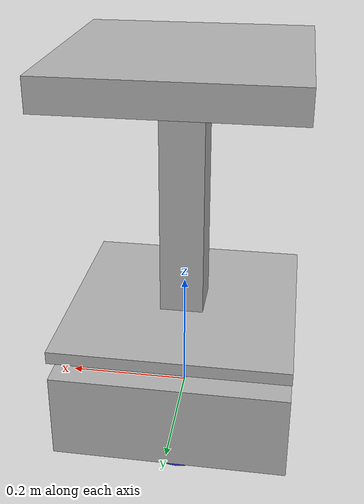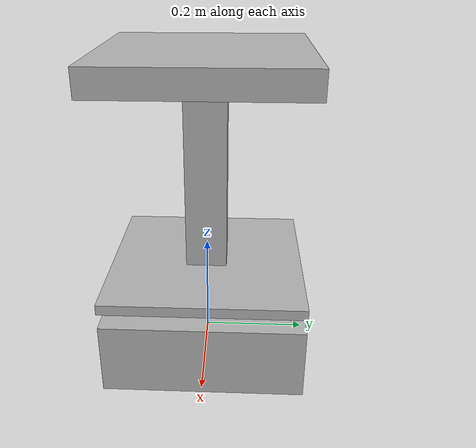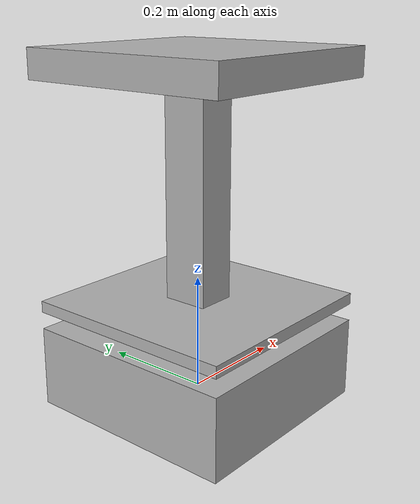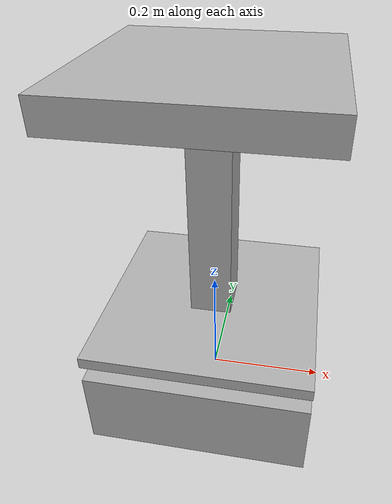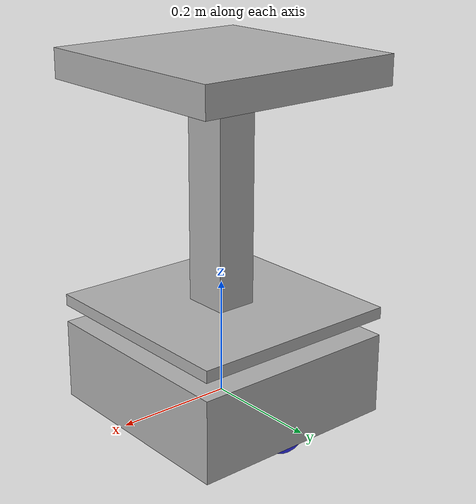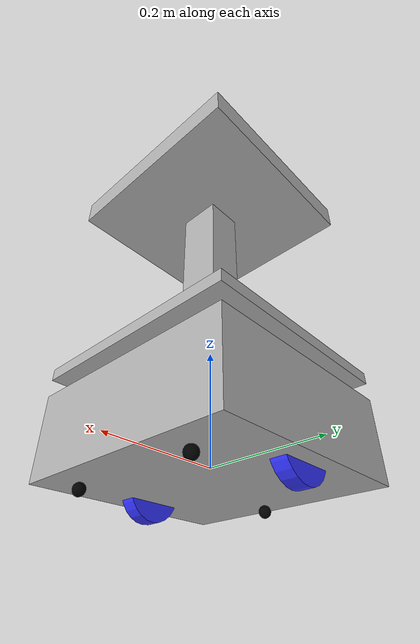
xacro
<?xml version="1.0"?>
<robot xmlns:xacro="http://www.ros.org/wiki/xacro"  name="robot">

    <xacro:include filename="inertial_macros.xacro"/>

    <!-- PARAMETERS -->

    <!-- CHASSIS PARAMETERS -->
    <xacro:property name="chassis_length" value="0.370"/>
    <xacro:property name="chassis_width" value="0.380"/>
    <xacro:property name="chassis_height" value="0.140"/>
    <xacro:property name="chassis_mass" value="1.0"/>

    <!-- EXTURSION PARAMETERS -->
    <xacro:property name="ext_length" value="0.070"/>
    <xacro:property name="ext_width" value="0.080"/>
    <xacro:property name="ext_height" value="0.480"/>
    <xacro:property name="ext_mass" value="0.5"/>

    <!-- TOF_TABLE PARAMETERS -->
    <xacro:property name="tt_length" value="0.370"/>
    <xacro:property name="tt_width" value="0.380"/>
    <xacro:property name="tt_height" value="0.020"/>
    <xacro:property name="tt_mass" value="0.02"/>

    <!-- HMI PARAMETERS -->
    <xacro:property name="hmi_length" value="0.370"/>
    <xacro:property name="hmi_width" value="0.380"/>
    <xacro:property name="hmi_height" value="0.050"/>
    <xacro:property name="hmi_mass" value="0.5"/>

    <!-- OFFSET PARAMETERS -->
    <xacro:property name="wheel_offset_x" value="0.285"/>
    <xacro:property name="wheel_offset_y" value="0.148"/>
    <xacro:property name="wheel_offset_z" value="0.005"/>

    <!-- WHEELS PARAMETERS -->
    <xacro:property name="wheel_radius" value="0.05"/>
    <xacro:property name="wheel_thickness" value="0.026"/>
    <xacro:property name="wheel_mass" value="0.05"/>

    <!-- CASTER WHEEL PARAMETERS -->
    <xacro:property name="caster_wheel_radius" value="0.01"/>
    <xacro:property name="caster_wheel_mass" value="0.01"/>

    <!-- CASTER WHEEL OFFSET PARAMTERS -->
    <xacro:property name="caster_wheel_offset_x" value="0.13"/>
    <xacro:property name="caster_wheel_offset_y" value="0.11"/>
    <xacro:property name="caster_wheel_offset_z" value="${wheel_offset_z - wheel_radius + caster_wheel_radius}"/>

    <!-- XACRO COLORS -->
    <material name="white">
        <color rgba="1 1 1 1"/>
    </material>

    <material name="orange">
        <color rgba="1 0.3 0.1 1"/>
    </material>

    <material name="grey">
        <color rgba="0.2 0.2 0.2 1.0"/>
    </material>

    <material name="green">
        <color rgba="0 0.8 0 1.0"/>
    </material>

    <material name="blue">
        <color rgba="0.2 0.2 1 1"/>
    </material>

    <material name="black">
        <color rgba="0 0 0 1"/>
    </material>

    <material name="red">
        <color rgba="1 0 0 1"/>
    </material>

    <material name="silver">
        <color rgba="0.7 0.7 0.7 1.0"/>
    </material>

    <!-- BASE LINK -->
    <link name="base_link">
    </link>

    <!-- BASE FOOTPRINT JOINT -->
    <joint name="base_footprint_joint" type="fixed">
        <parent link="base_link"/>
        <child link="base_footprint"/>
        <origin xyz="0 0 0" rpy="0 0 0"/>
    </joint>

    <!-- BASE FOOTPRINT LINK -->
    <link name="base_footprint">
    </link>

    <!-- CHASSIS JOINT -->
    <joint name="chassis_joint" type="fixed">
        <parent link="base_link"/>
        <child link="chassis"/>
        <origin xyz="0 0 ${-wheel_offset_z}"/>
    </joint>

    <!-- CHASSIS LINK -->
    <link name="chassis">

        <!-- VISUAL -->
        <visual>
            <origin xyz="0 0 0.05"/>
            <geometry>
                <box size="${chassis_length} ${chassis_width} ${chassis_height}"/>
            </geometry>
            <material name="silver"/>
        </visual>

        <!-- COLLISION -->
        <collision>
            <origin xyz="0 0 ${chassis_height}"/>
            <geometry>
                <box size="${chassis_length} ${chassis_width} ${chassis_height}"/>
            </geometry>
        </collision>

        <!-- INERTIA -->
        <xacro:inertial_box mass="${chassis_mass}" x="${chassis_length}" y="${chassis_width}" z="${chassis_height}">
            <origin xyz="0 0 ${chassis_height/2}" rpy="0 0 0"/>
        </xacro:inertial_box>

    </link>

    <!-- GAZEBO CHASSIS -->
    <gazebo reference="chassis">
        <material>Gazebo/Silver</material>
    </gazebo>

    <!-- EXTURSION JOINT -->
    <joint name="ext_joint" type="fixed">
        <parent link="chassis"/>
        <child link="ext_link"/>
        <origin xyz="0 0 ${chassis_height}"/>
    </joint>

    <!-- EXTURSION LINK -->
    <link name="ext_link">
        <!-- VISUAL -->
        <visual>
            <origin xyz="0 0 0.200"/>
            <geometry>
                <box size="${ext_length} ${ext_width} ${ext_height}"/>
            </geometry>
            <material name="silver"/>
        </visual>

        <!-- COLLISION -->
        <collision>
            <origin xyz="0 0 ${ext_height}"/>
            <geometry>
                <box size="${ext_length} ${ext_width} ${ext_height}"/>
            </geometry>
        </collision>

        <!-- INERTIA -->
        <xacro:inertial_box mass="${ext_mass}" x="${ext_length}" y="${ext_width}" z="${ext_height}">
            <origin xyz="0 0 ${ext_height/2}" rpy="0 0 0"/>
        </xacro:inertial_box>
    </link>

    <!-- GAZEBO EXTURSION -->
    <gazebo reference="ext_link">
        <material>Gazebo/Silver</material>
    </gazebo>

    <!-- TOF_TABLE JOINT -->
    <joint name="tt_joint" type="fixed">
        <parent link="chassis"/>
        <child link="tt_link"/>
        <origin xyz="0 0 ${chassis_height}"/>
    </joint>

    <!-- TOF_TABLE LINK -->
    <link name="tt_link">
        <!-- VISUAL -->
        <visual>
            <origin xyz="0 0 0.02"/>
            <geometry>
                <box size="${tt_length} ${tt_width} ${tt_height}"/>
            </geometry>
            <material name="silver"/>
        </visual>

        <!-- COLLISION -->
        <collision>
            <origin xyz="0 0 ${tt_height}"/>
            <geometry>
                <box size="${tt_length} ${tt_width} ${tt_height}"/>
            </geometry>
        </collision>

        <!-- INERTIA -->
        <xacro:inertial_box mass="${tt_mass}" x="${tt_length}" y="${tt_width}" z="${tt_height}">
            <origin xyz="0 0 ${tt_height/2}" rpy="0 0 0"/>
        </xacro:inertial_box>
    </link>

    <!-- GAZEBO TOF_TABLE-->
    <gazebo reference="tt_link">
        <material>Gazebo/Silver</material>
    </gazebo>

    <!-- HMI JOINT -->
    <joint name="hmi_joint" type="fixed">
        <parent link="chassis"/>
        <child link="hmi_link"/>
        <origin xyz="0 0 ${chassis_height}"/>
    </joint>

    <!-- HMI LINK -->
    <link name="hmi_link">
        <!-- VISUAL -->
        <visual>
            <origin xyz="0 0 0.425"/>
            <geometry>
                <box size="${hmi_length} ${hmi_width} ${hmi_height}"/>
            </geometry>
            <material name="silver"/>
        </visual>

        <!-- COLLISION -->
        <collision>
            <origin xyz="0 0 ${hmi_height}"/>
            <geometry>
                <box size="${hmi_length} ${hmi_width} ${hmi_height}"/>
            </geometry>
        </collision>

        <!-- INERTIA -->
        <xacro:inertial_box mass="${hmi_mass}" x="${hmi_length}" y="${hmi_width}" z="${hmi_height}">
            <origin xyz="0 0 ${hmi_height/2}" rpy="0 0 0"/>
        </xacro:inertial_box>
    </link>

    <!-- GAZEBO HMI -->
    <gazebo reference="hmi_link">
        <material>Gazebo/Silver</material>
    </gazebo>

    <!-- LEFT WHEEL JOINT -->

    <joint name="left_wheel_joint" type="continuous">
        <parent link="chassis"/>
        <child link="left_wheel"/>
        <origin xyz="-0.01 ${wheel_offset_y} 0" rpy="-${pi/2} 0 0" />
        <axis xyz="0 0 1"/>
    </joint>

    <!-- LEFT WHEEL LINK -->

    <link name="left_wheel">

        <!-- VISUAL -->
        <visual>
            <geometry>
                <cylinder radius="${wheel_radius}" length="${wheel_thickness}"/>
            </geometry>
            <material name="blue"/>
        </visual>

        <!-- COLLISION -->
        <collision>
            <geometry>
                <sphere radius="${wheel_radius}"/>
            </geometry>
        </collision>

        <!-- INERTIA -->
        <xacro:inertial_cylinder mass="${wheel_mass}" length="${wheel_thickness}" radius="${wheel_radius}">
            <origin xyz="0 0 0" rpy="0 0 0"/>
        </xacro:inertial_cylinder>

    </link>

    <!-- GAZEBO LEFT WHEEL -->
    <gazebo reference="left_wheel">
        <material>Gazebo/Blue</material>
    </gazebo>

    <!-- RIGHT WHEEL JOINT -->
    <joint name="right_wheel_joint" type="continuous">
        <parent link="chassis"/>
        <child link="right_wheel"/>
        <origin xyz="-0.01 ${-wheel_offset_y} 0" rpy="${pi/2} 0 0"/>
        <axis xyz="0 0 -1"/>
    </joint>

    <!-- RIGHT WHEEL LINK -->
    <link name="right_wheel">

        <!-- VISUAL -->
        <visual>
            <geometry>
                <cylinder radius="${wheel_radius}" length="${wheel_thickness}"/>
            </geometry>
            <material name="blue"/>
        </visual>

        <!-- COLLISION -->
        <collision>
            <geometry>
                <sphere radius="${wheel_radius}"/>
            </geometry>
        </collision>

        <!-- INERTIA -->
        <xacro:inertial_cylinder mass="${wheel_mass}" length="${wheel_thickness}" radius="${wheel_radius}">
            <origin xyz="0 0 0" rpy="0 0 0"/>
        </xacro:inertial_cylinder>

    </link>

    <!-- GAZEBO RIGHT WHEEL -->
    <gazebo reference="right_wheel">
        <material>Gazebo/Blue</material>
    </gazebo>

    <!-- REAR CASTER WHEEL -->

    <!-- REAR CASTER WHEEL JOINT -->
    <joint name="rear_caster_wheel_joint" type="fixed">
        <parent link="chassis"/>
        <child link="rear_caster_wheel"/>
        <origin xyz="${-caster_wheel_offset_x} 0 ${caster_wheel_offset_z}"/>
    </joint>

    <!-- REAR CASTER WHEEL LINK -->
    <link name="rear_caster_wheel">
        <!-- VISUAL -->
        <visual>
            <geometry>
                <sphere radius="${caster_wheel_radius}"/>
            </geometry>
            <material name="black"/>
        </visual>

        <!-- COLLISION -->
        <collision>
            <geometry>
                <sphere radius="${caster_wheel_radius}"/>
            </geometry>
        </collision>

        <!-- INERTIA -->
        <xacro:inertial_sphere mass="${caster_wheel_mass}" radius="${caster_wheel_radius}">
            <origin xyz="0 0 0" rpy="0 0 0"/>
        </xacro:inertial_sphere>
    </link>

    <!-- GAZEBO REAR CASTER WHEEL -->
    <gazebo reference="rear_caster_wheel">
        <material>Gazebo/Black</material>
        <mu1 value="0.001"/>
        <mu2 value="0.001"/>
    </gazebo>

    <!-- LEFT CASTER WHEEL  -->

    <joint name="left_caster_wheel_joint" type="fixed">
        <parent link="chassis"/>
        <child link="left_caster_wheel"/>
        <origin xyz="0.15 ${caster_wheel_offset_y} ${caster_wheel_offset_z}"/>
    </joint>

    <!-- LEFT CASTER WHEEL LINK -->
    <link name="left_caster_wheel">
        <!-- VISUAL -->
        <visual>
            <geometry>
                <sphere radius="${caster_wheel_radius}"/>
            </geometry>
            <material name="black"/>
        </visual>

        <!-- COLLISION -->
        <collision>
            <geometry>
                <sphere radius="${caster_wheel_radius}"/>
            </geometry>
        </collision>

        <!-- INERTIA -->
        <xacro:inertial_sphere mass="${caster_wheel_mass}" radius="${caster_wheel_radius}">
            <origin xyz="0 0 0" rpy="0 0 0"/>
        </xacro:inertial_sphere>

    </link>

    <!-- GAZEBO LEFT CASTER WHEEL -->
    <gazebo reference="left_caster_wheel">
        <material>Gazebo/Black</material>
        <mu1 value="0.001"/>
        <mu2 value="0.001"/>
    </gazebo>

    <!-- RIGHT CASTER WHEEL 2 -->

    <joint name="right_caster_wheel_joint" type="fixed">
        <parent link="chassis"/>
        <child link="right_caster_wheel"/>
        <origin xyz="0.15 ${-caster_wheel_offset_y} ${caster_wheel_offset_z}"/>
    </joint>

    <!-- REAR CASTER WHEEL LINK -->
    <link name="right_caster_wheel">
        <!-- VISUAL -->
        <visual>
            <geometry>
                <sphere radius="${caster_wheel_radius}"/>
            </geometry>
            <material name="black"/>
        </visual>

        <!-- COLLISION -->
        <collision>
            <geometry>
                <sphere radius="${caster_wheel_radius}"/>
            </geometry>
        </collision>

        <!-- INERTIA -->
        <xacro:inertial_sphere mass="${caster_wheel_mass}" radius="${caster_wheel_radius}">
            <origin xyz="0 0 0" rpy="0 0 0"/>
        </xacro:inertial_sphere>
    </link>

    <!-- GAZEBO RIGHT CASTER WHEEL -->
    <gazebo reference="right_caster_wheel">
        <material>Gazebo/Black</material>
        <mu1 value="0.001"/>
        <mu2 value="0.001"/>
    </gazebo>

</robot>
